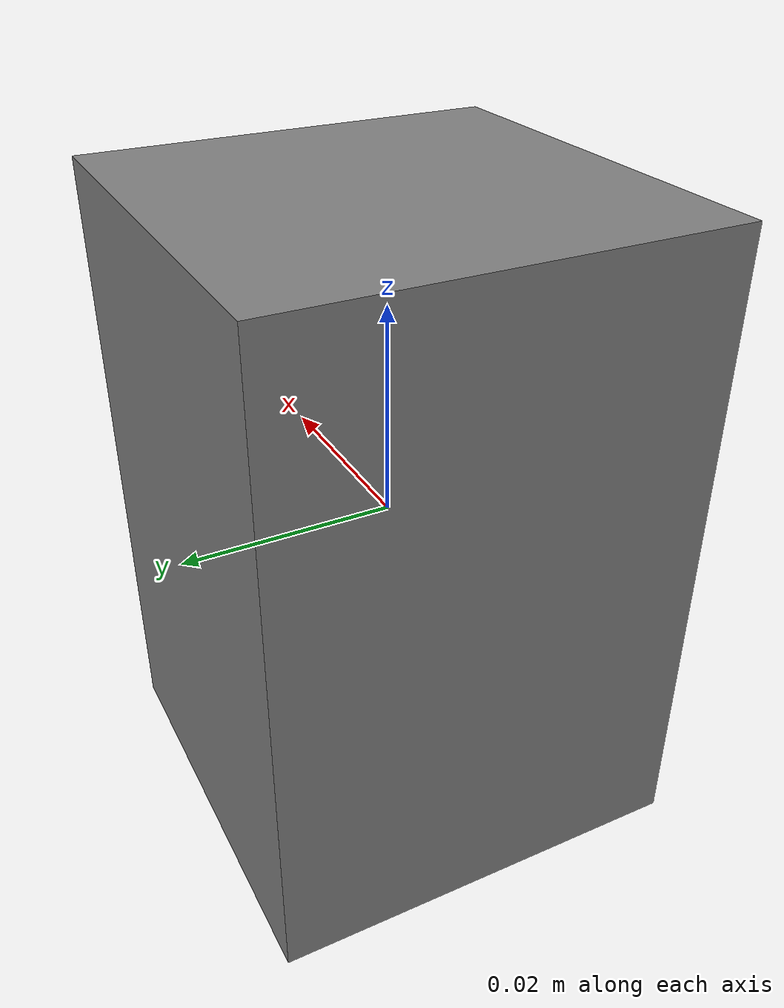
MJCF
<mujoco model="custombox">
  <asset>
    <texture file="../textures/wood-tiles.png" type="cube" name="ceramic-met"/>
    <material name="sceramic" reflectance="0.5" shininess="1.0" specular="1.0" texrepeat="1 1" texture="ceramic-met" texuniform="true"/>
  </asset>
  <worldbody>
    <body>

      <body name="object">
        <geom pos="0 0 0" size="0.02 0.02 0.03" type="box" group="0" friction="1 1 1"/>
        <geom pos="0 0 0" material="sceramic" size="0.02 0.02 0.03" type="box" conaffinity="0" contype="0" group="0" mass="0.001"/>
      </body>

      <site rgba="0 0 0 0" size="0.001" pos="0 0 -0.03" name="bottom_site"/>
      <site rgba="0 0 0 0" size="0.001" pos="0 0 0.03" name="top_site"/>
      <site rgba="0 0 0 0" size="0.001" pos="0.02 0.02 0." name="horizontal_radius_site"/>
    </body>
  </worldbody>
</mujoco>
